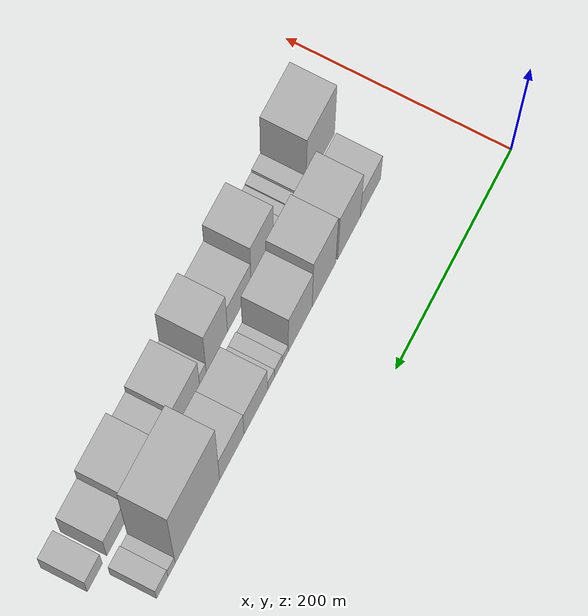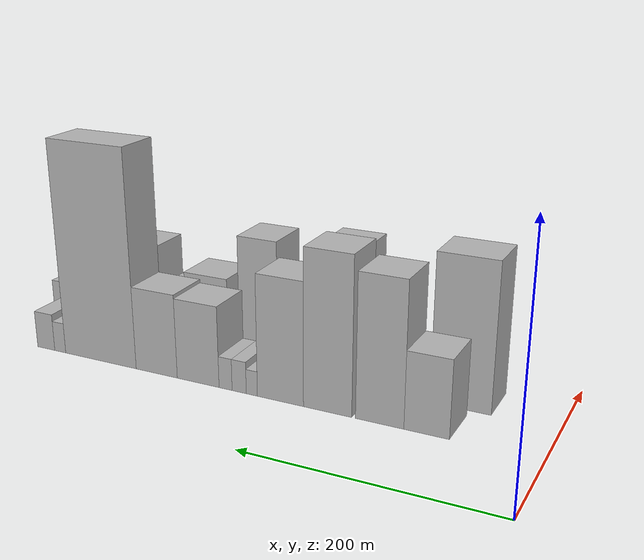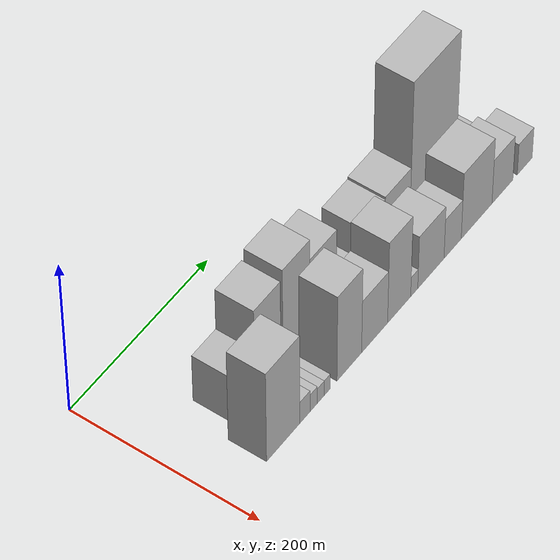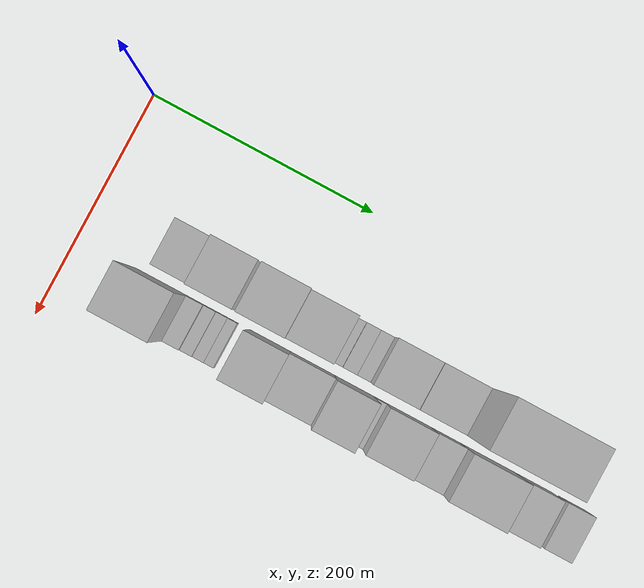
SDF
<sdf version="1.6">
 <world name="default">
  <model name="building_14">
   <static>1</static>
   <pose>100.0000 86.7150 0 0.000000 0.000000 0.000000</pose>
   <link name="link">
    <pose>0 0 31.50 0 0 0</pose>
    <collision name="collision"><geometry><box><size>40.0000 34.9383 63.0000</size></box></geometry></collision>
    <visual name="visual">
     <cast_shadows>0</cast_shadows>
     <geometry><box><size>40.0000 34.9383 63.0000</size></box></geometry>
     <material>
      <script>
       <uri>model://HANNAS_wall/materials/scripts</uri>
       <uri>model://HANNAS_wall/materials/textures</uri>
       <name>vrc/HANNAS_wall</name>
      </script>
     </material>
    </visual>
   </link>
  </model>
  <model name="building_15">
   <static>1</static>
   <pose>100.0000 123.4704 0 0.000000 0.000000 0.000000</pose>
   <link name="link">
    <pose>0 0 58.50 0 0 0</pose>
    <collision name="collision"><geometry><box><size>40.0000 38.5726 117.0000</size></box></geometry></collision>
    <visual name="visual">
     <cast_shadows>0</cast_shadows>
     <geometry><box><size>40.0000 38.5726 117.0000</size></box></geometry>
     <material>
      <script>
       <uri>model://HANNAS_wall/materials/scripts</uri>
       <uri>model://HANNAS_wall/materials/textures</uri>
       <name>vrc/HANNAS_wall</name>
      </script>
     </material>
    </visual>
   </link>
  </model>
  <model name="building_16">
   <static>1</static>
   <pose>100.0000 165.8754 0 0.000000 0.000000 0.000000</pose>
   <link name="link">
    <pose>0 0 64.50 0 0 0</pose>
    <collision name="collision"><geometry><box><size>40.0000 40.2373 129.0000</size></box></geometry></collision>
    <visual name="visual">
     <cast_shadows>0</cast_shadows>
     <geometry><box><size>40.0000 40.2373 129.0000</size></box></geometry>
     <material>
      <script>
       <uri>model://HANNAS_wall/materials/scripts</uri>
       <uri>model://HANNAS_wall/materials/textures</uri>
       <name>vrc/HANNAS_wall</name>
      </script>
     </material>
    </visual>
   </link>
  </model>
  <model name="building_17">
   <static>1</static>
   <pose>100.0000 206.0309 0 0.000000 0.000000 0.000000</pose>
   <link name="link">
    <pose>0 0 51.00 0 0 0</pose>
    <collision name="collision"><geometry><box><size>40.0000 40.0737 102.0000</size></box></geometry></collision>
    <visual name="visual">
     <cast_shadows>0</cast_shadows>
     <geometry><box><size>40.0000 40.0737 102.0000</size></box></geometry>
     <material>
      <script>
       <uri>model://HANNAS_wall/materials/scripts</uri>
       <uri>model://HANNAS_wall/materials/textures</uri>
       <name>vrc/HANNAS_wall</name>
      </script>
     </material>
    </visual>
   </link>
  </model>
  <model name="building_18">
   <static>1</static>
   <pose>100.0000 231.0367 0 0.000000 0.000000 0.000000</pose>
   <link name="link">
    <pose>0 0 10.50 0 0 0</pose>
    <collision name="collision"><geometry><box><size>40.0000 9.9379 21.0000</size></box></geometry></collision>
    <visual name="visual">
     <cast_shadows>0</cast_shadows>
     <geometry><box><size>40.0000 9.9379 21.0000</size></box></geometry>
     <material>
      <script>
       <uri>model://HANNAS_wall/materials/scripts</uri>
       <uri>model://HANNAS_wall/materials/textures</uri>
       <name>vrc/HANNAS_wall</name>
      </script>
     </material>
    </visual>
   </link>
  </model>
  <model name="building_19">
   <static>1</static>
   <pose>100.0000 242.3863 0 0.000000 0.000000 0.000000</pose>
   <link name="link">
    <pose>0 0 13.50 0 0 0</pose>
    <collision name="collision"><geometry><box><size>40.0000 12.7612 27.0000</size></box></geometry></collision>
    <visual name="visual">
     <cast_shadows>0</cast_shadows>
     <geometry><box><size>40.0000 12.7612 27.0000</size></box></geometry>
     <material>
      <script>
       <uri>model://HANNAS_wall/materials/scripts</uri>
       <uri>model://HANNAS_wall/materials/textures</uri>
       <name>vrc/HANNAS_wall</name>
      </script>
     </material>
    </visual>
   </link>
  </model>
  <model name="building_20">
   <static>1</static>
   <pose>100.0000 254.7174 0 0.000000 0.000000 0.000000</pose>
   <link name="link">
    <pose>0 0 13.50 0 0 0</pose>
    <collision name="collision"><geometry><box><size>40.0000 11.9011 27.0000</size></box></geometry></collision>
    <visual name="visual">
     <cast_shadows>0</cast_shadows>
     <geometry><box><size>40.0000 11.9011 27.0000</size></box></geometry>
     <material>
      <script>
       <uri>model://HANNAS_wall/materials/scripts</uri>
       <uri>model://HANNAS_wall/materials/textures</uri>
       <name>vrc/HANNAS_wall</name>
      </script>
     </material>
    </visual>
   </link>
  </model>
  <model name="building_21">
   <static>1</static>
   <pose>100.0000 280.2527 0 0.000000 0.000000 0.000000</pose>
   <link name="link">
    <pose>0 0 34.50 0 0 0</pose>
    <collision name="collision"><geometry><box><size>40.0000 39.1695 69.0000</size></box></geometry></collision>
    <visual name="visual">
     <cast_shadows>0</cast_shadows>
     <geometry><box><size>40.0000 39.1695 69.0000</size></box></geometry>
     <material>
      <script>
       <uri>model://HANNAS_wall/materials/scripts</uri>
       <uri>model://HANNAS_wall/materials/textures</uri>
       <name>vrc/HANNAS_wall</name>
      </script>
     </material>
    </visual>
   </link>
  </model>
  <model name="building_22">
   <static>1</static>
   <pose>100.0000 319.8653 0 0.000000 0.000000 0.000000</pose>
   <link name="link">
    <pose>0 0 36.00 0 0 0</pose>
    <collision name="collision"><geometry><box><size>40.0000 40.0557 72.0000</size></box></geometry></collision>
    <visual name="visual">
     <cast_shadows>0</cast_shadows>
     <geometry><box><size>40.0000 40.0557 72.0000</size></box></geometry>
     <material>
      <script>
       <uri>model://HANNAS_wall/materials/scripts</uri>
       <uri>model://HANNAS_wall/materials/textures</uri>
       <name>vrc/HANNAS_wall</name>
      </script>
     </material>
    </visual>
   </link>
  </model>
  <model name="building_23">
   <static>1</static>
   <pose>100.0000 376.1777 0 0.000000 0.000000 0.000000</pose>
   <link name="link">
    <pose>0 0 93.00 0 0 0</pose>
    <collision name="collision"><geometry><box><size>40.0000 72.5691 186.0000</size></box></geometry></collision>
    <visual name="visual">
     <cast_shadows>0</cast_shadows>
     <geometry><box><size>40.0000 72.5691 186.0000</size></box></geometry>
     <material>
      <script>
       <uri>model://HANNAS_wall/materials/scripts</uri>
       <uri>model://HANNAS_wall/materials/textures</uri>
       <name>vrc/HANNAS_wall</name>
      </script>
     </material>
    </visual>
   </link>
  </model>
  <model name="building_24">
   <static>1</static>
   <pose>100.0000 418.3078 0 0.000000 0.000000 0.000000</pose>
   <link name="link">
    <pose>0 0 13.50 0 0 0</pose>
    <collision name="collision"><geometry><box><size>40.0000 11.6911 27.0000</size></box></geometry></collision>
    <visual name="visual">
     <cast_shadows>0</cast_shadows>
     <geometry><box><size>40.0000 11.6911 27.0000</size></box></geometry>
     <material>
      <script>
       <uri>model://HANNAS_wall/materials/scripts</uri>
       <uri>model://HANNAS_wall/materials/textures</uri>
       <name>vrc/HANNAS_wall</name>
      </script>
     </material>
    </visual>
   </link>
  </model>
  <model name="building_25">
   <static>1</static>
   <pose>100.0000 433.3633 0 0.000000 0.000000 0.000000</pose>
   <link name="link">
    <pose>0 0 16.50 0 0 0</pose>
    <collision name="collision"><geometry><box><size>40.0000 18.4199 33.0000</size></box></geometry></collision>
    <visual name="visual">
     <cast_shadows>0</cast_shadows>
     <geometry><box><size>40.0000 18.4199 33.0000</size></box></geometry>
     <material>
      <script>
       <uri>model://HANNAS_wall/materials/scripts</uri>
       <uri>model://HANNAS_wall/materials/textures</uri>
       <name>vrc/HANNAS_wall</name>
      </script>
     </material>
    </visual>
   </link>
  </model>
  <model name="building_37">
   <static>1</static>
   <pose>149.0000 77.2973 0 0.000000 0.000000 0.000000</pose>
   <link name="link">
    <pose>0 0 61.50 0 0 0</pose>
    <collision name="collision"><geometry><box><size>40.0000 48.7939 123.0000</size></box></geometry></collision>
    <visual name="visual">
     <cast_shadows>0</cast_shadows>
     <geometry><box><size>40.0000 48.7939 123.0000</size></box></geometry>
     <material>
      <script>
       <uri>model://HANNAS_wall/materials/scripts</uri>
       <uri>model://HANNAS_wall/materials/textures</uri>
       <name>vrc/HANNAS_wall</name>
      </script>
     </material>
    </visual>
   </link>
  </model>
  <model name="building_38">
   <static>1</static>
   <pose>149.0000 109.2500 0 0.000000 0.000000 0.000000</pose>
   <link name="link">
    <pose>0 0 15.00 0 0 0</pose>
    <collision name="collision"><geometry><box><size>40.0000 15.1116 30.0000</size></box></geometry></collision>
    <visual name="visual">
     <cast_shadows>0</cast_shadows>
     <geometry><box><size>40.0000 15.1116 30.0000</size></box></geometry>
     <material>
      <script>
       <uri>model://HANNAS_wall/materials/scripts</uri>
       <uri>model://HANNAS_wall/materials/textures</uri>
       <name>vrc/HANNAS_wall</name>
      </script>
     </material>
    </visual>
   </link>
  </model>
  <model name="building_39">
   <static>1</static>
   <pose>149.0000 122.2734 0 0.000000 0.000000 0.000000</pose>
   <link name="link">
    <pose>0 0 12.00 0 0 0</pose>
    <collision name="collision"><geometry><box><size>40.0000 10.9351 24.0000</size></box></geometry></collision>
    <visual name="visual">
     <cast_shadows>0</cast_shadows>
     <geometry><box><size>40.0000 10.9351 24.0000</size></box></geometry>
     <material>
      <script>
       <uri>model://HANNAS_wall/materials/scripts</uri>
       <uri>model://HANNAS_wall/materials/textures</uri>
       <name>vrc/HANNAS_wall</name>
      </script>
     </material>
    </visual>
   </link>
  </model>
  <model name="building_40">
   <static>1</static>
   <pose>149.0000 132.8944 0 0.000000 0.000000 0.000000</pose>
   <link name="link">
    <pose>0 0 10.50 0 0 0</pose>
    <collision name="collision"><geometry><box><size>40.0000 10.3069 21.0000</size></box></geometry></collision>
    <visual name="visual">
     <cast_shadows>0</cast_shadows>
     <geometry><box><size>40.0000 10.3069 21.0000</size></box></geometry>
     <material>
      <script>
       <uri>model://HANNAS_wall/materials/scripts</uri>
       <uri>model://HANNAS_wall/materials/textures</uri>
       <name>vrc/HANNAS_wall</name>
      </script>
     </material>
    </visual>
   </link>
  </model>
  <model name="building_41">
   <static>1</static>
   <pose>149.0000 142.4673 0 0.000000 0.000000 0.000000</pose>
   <link name="link">
    <pose>0 0 10.50 0 0 0</pose>
    <collision name="collision"><geometry><box><size>40.0000 8.8389 21.0000</size></box></geometry></collision>
    <visual name="visual">
     <cast_shadows>0</cast_shadows>
     <geometry><box><size>40.0000 8.8389 21.0000</size></box></geometry>
     <material>
      <script>
       <uri>model://HANNAS_wall/materials/scripts</uri>
       <uri>model://HANNAS_wall/materials/textures</uri>
       <name>vrc/HANNAS_wall</name>
      </script>
     </material>
    </visual>
   </link>
  </model>
  <model name="building_42">
   <static>1</static>
   <pose>149.0000 175.4946 0 0.000000 0.000000 0.000000</pose>
   <link name="link">
    <pose>0 0 58.50 0 0 0</pose>
    <collision name="collision"><geometry><box><size>40.0000 37.2157 117.0000</size></box></geometry></collision>
    <visual name="visual">
     <cast_shadows>0</cast_shadows>
     <geometry><box><size>40.0000 37.2157 117.0000</size></box></geometry>
     <material>
      <script>
       <uri>model://HANNAS_wall/materials/scripts</uri>
       <uri>model://HANNAS_wall/materials/textures</uri>
       <name>vrc/HANNAS_wall</name>
      </script>
     </material>
    </visual>
   </link>
  </model>
  <model name="building_43">
   <static>1</static>
   <pose>149.0000 213.9067 0 0.000000 0.000000 0.000000</pose>
   <link name="link">
    <pose>0 0 36.00 0 0 0</pose>
    <collision name="collision"><geometry><box><size>40.0000 39.6085 72.0000</size></box></geometry></collision>
    <visual name="visual">
     <cast_shadows>0</cast_shadows>
     <geometry><box><size>40.0000 39.6085 72.0000</size></box></geometry>
     <material>
      <script>
       <uri>model://HANNAS_wall/materials/scripts</uri>
       <uri>model://HANNAS_wall/materials/textures</uri>
       <name>vrc/HANNAS_wall</name>
      </script>
     </material>
    </visual>
   </link>
  </model>
  <model name="building_44">
   <static>1</static>
   <pose>149.0000 251.4720 0 0.000000 0.000000 0.000000</pose>
   <link name="link">
    <pose>0 0 55.50 0 0 0</pose>
    <collision name="collision"><geometry><box><size>40.0000 35.5220 111.0000</size></box></geometry></collision>
    <visual name="visual">
     <cast_shadows>0</cast_shadows>
     <geometry><box><size>40.0000 35.5220 111.0000</size></box></geometry>
     <material>
      <script>
       <uri>model://HANNAS_wall/materials/scripts</uri>
       <uri>model://HANNAS_wall/materials/textures</uri>
       <name>vrc/HANNAS_wall</name>
      </script>
     </material>
    </visual>
   </link>
  </model>
  <model name="building_45">
   <static>1</static>
   <pose>149.0000 274.7376 0 0.000000 0.000000 0.000000</pose>
   <link name="link">
    <pose>0 0 13.50 0 0 0</pose>
    <collision name="collision"><geometry><box><size>40.0000 11.0093 27.0000</size></box></geometry></collision>
    <visual name="visual">
     <cast_shadows>0</cast_shadows>
     <geometry><box><size>40.0000 11.0093 27.0000</size></box></geometry>
     <material>
      <script>
       <uri>model://HANNAS_wall/materials/scripts</uri>
       <uri>model://HANNAS_wall/materials/textures</uri>
       <name>vrc/HANNAS_wall</name>
      </script>
     </material>
    </visual>
   </link>
  </model>
  <model name="building_46">
   <static>1</static>
   <pose>149.0000 300.7227 0 0.000000 0.000000 0.000000</pose>
   <link name="link">
    <pose>0 0 36.00 0 0 0</pose>
    <collision name="collision"><geometry><box><size>40.0000 40.9609 72.0000</size></box></geometry></collision>
    <visual name="visual">
     <cast_shadows>0</cast_shadows>
     <geometry><box><size>40.0000 40.9609 72.0000</size></box></geometry>
     <material>
      <script>
       <uri>model://HANNAS_wall/materials/scripts</uri>
       <uri>model://HANNAS_wall/materials/textures</uri>
       <name>vrc/HANNAS_wall</name>
      </script>
     </material>
    </visual>
   </link>
  </model>
  <model name="building_47">
   <static>1</static>
   <pose>149.0000 334.7737 0 0.000000 0.000000 0.000000</pose>
   <link name="link">
    <pose>0 0 27.00 0 0 0</pose>
    <collision name="collision"><geometry><box><size>40.0000 27.1410 54.0000</size></box></geometry></collision>
    <visual name="visual">
     <cast_shadows>0</cast_shadows>
     <geometry><box><size>40.0000 27.1410 54.0000</size></box></geometry>
     <material>
      <script>
       <uri>model://HANNAS_wall/materials/scripts</uri>
       <uri>model://HANNAS_wall/materials/textures</uri>
       <name>vrc/HANNAS_wall</name>
      </script>
     </material>
    </visual>
   </link>
  </model>
  <model name="building_48">
   <static>1</static>
   <pose>149.0000 372.8308 0 0.000000 0.000000 0.000000</pose>
   <link name="link">
    <pose>0 0 45.00 0 0 0</pose>
    <collision name="collision"><geometry><box><size>40.0000 48.9732 90.0000</size></box></geometry></collision>
    <visual name="visual">
     <cast_shadows>0</cast_shadows>
     <geometry><box><size>40.0000 48.9732 90.0000</size></box></geometry>
     <material>
      <script>
       <uri>model://HANNAS_wall/materials/scripts</uri>
       <uri>model://HANNAS_wall/materials/textures</uri>
       <name>vrc/HANNAS_wall</name>
      </script>
     </material>
    </visual>
   </link>
  </model>
  <model name="building_49">
   <static>1</static>
   <pose>149.0000 414.2090 0 0.000000 0.000000 0.000000</pose>
   <link name="link">
    <pose>0 0 30.00 0 0 0</pose>
    <collision name="collision"><geometry><box><size>40.0000 33.7832 60.0000</size></box></geometry></collision>
    <visual name="visual">
     <cast_shadows>0</cast_shadows>
     <geometry><box><size>40.0000 33.7832 60.0000</size></box></geometry>
     <material>
      <script>
       <uri>model://HANNAS_wall/materials/scripts</uri>
       <uri>model://HANNAS_wall/materials/textures</uri>
       <name>vrc/HANNAS_wall</name>
      </script>
     </material>
    </visual>
   </link>
  </model>
  <model name="building_50">
   <static>1</static>
   <pose>149.0000 450.2238 0 0.000000 0.000000 0.000000</pose>
   <link name="link">
    <pose>0 0 21.00 0 0 0</pose>
    <collision name="collision"><geometry><box><size>40.0000 24.2465 42.0000</size></box></geometry></collision>
    <visual name="visual">
     <cast_shadows>0</cast_shadows>
     <geometry><box><size>40.0000 24.2465 42.0000</size></box></geometry>
     <material>
      <script>
       <uri>model://HANNAS_wall/materials/scripts</uri>
       <uri>model://HANNAS_wall/materials/textures</uri>
       <name>vrc/HANNAS_wall</name>
      </script>
     </material>
    </visual>
   </link>
  </model>
 </world>
</sdf>
